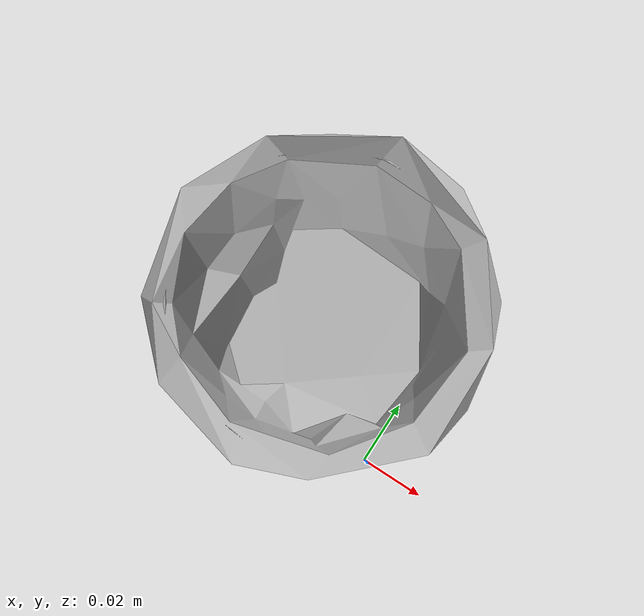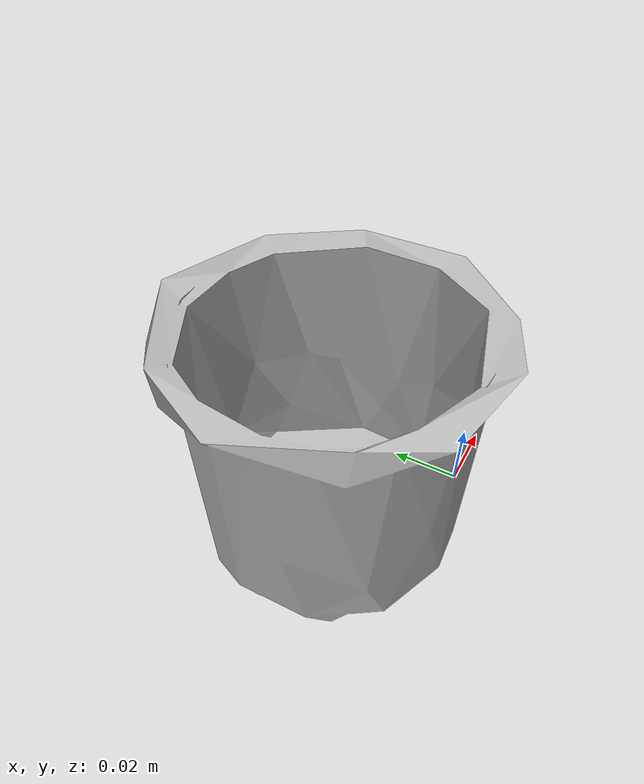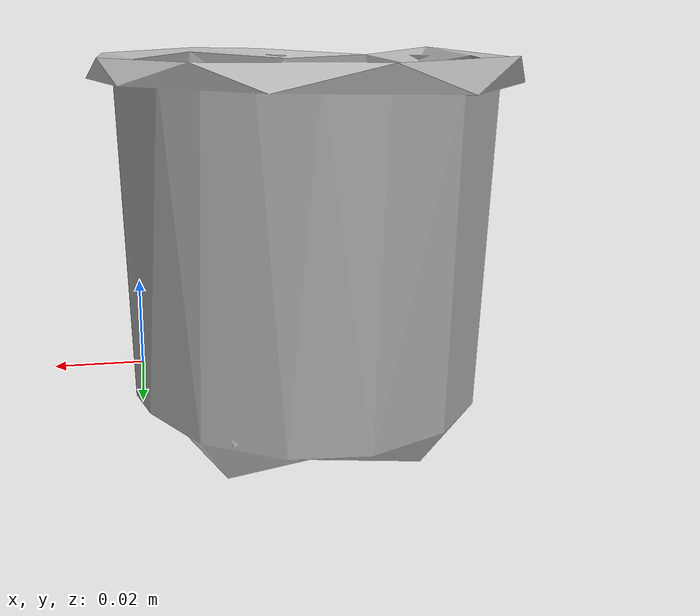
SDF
<?xml version='1.0'?>
<sdf version="1.4">
  <model name="065-f_cups">
    <static>false</static>
    <link name="link">
      <inertial>
        <pose>-0.03305146870184388 0.02611791631717889 0.03809561483019877 3.1356814057866464 0.0009310696975069809 -2.859274871168987</pose>
        <mass>0.03095364224031516</mass>
        <inertia>
          <ixx>2.3769041232010545e-05</ixx>
          <ixy>-1.473484890166429e-21</ixy>
          <ixz>-9.633574264671292e-23</ixz>
          <iyy>2.370090038752435e-05</iyy>
          <iyz>3.4467572790645336e-22</iyz>
          <izz>2.1496680724052704e-05</izz>
        </inertia>
      </inertial>
      <collision name="collision">
        <geometry>
          <mesh>
            <!-- Use a downsampled mesh for collisions -->
            <uri>model:///065-f_cups/065-f_cups_250_collision.stl</uri>
	        </mesh>
        </geometry>
        <surface>
      </surface>
      </collision>
      <visual name="visual">
        <geometry>
          <mesh>
            <uri>model:///065-f_cups/textured.obj</uri>
	        </mesh>
        </geometry>
        <material>
          <script>
            <uri>model:///065-f_cups/065-f_cups.material</uri>
            <name>065-f_cups</name>
          </script>
        </material>
      </visual>
    </link>
  </model>
</sdf>
